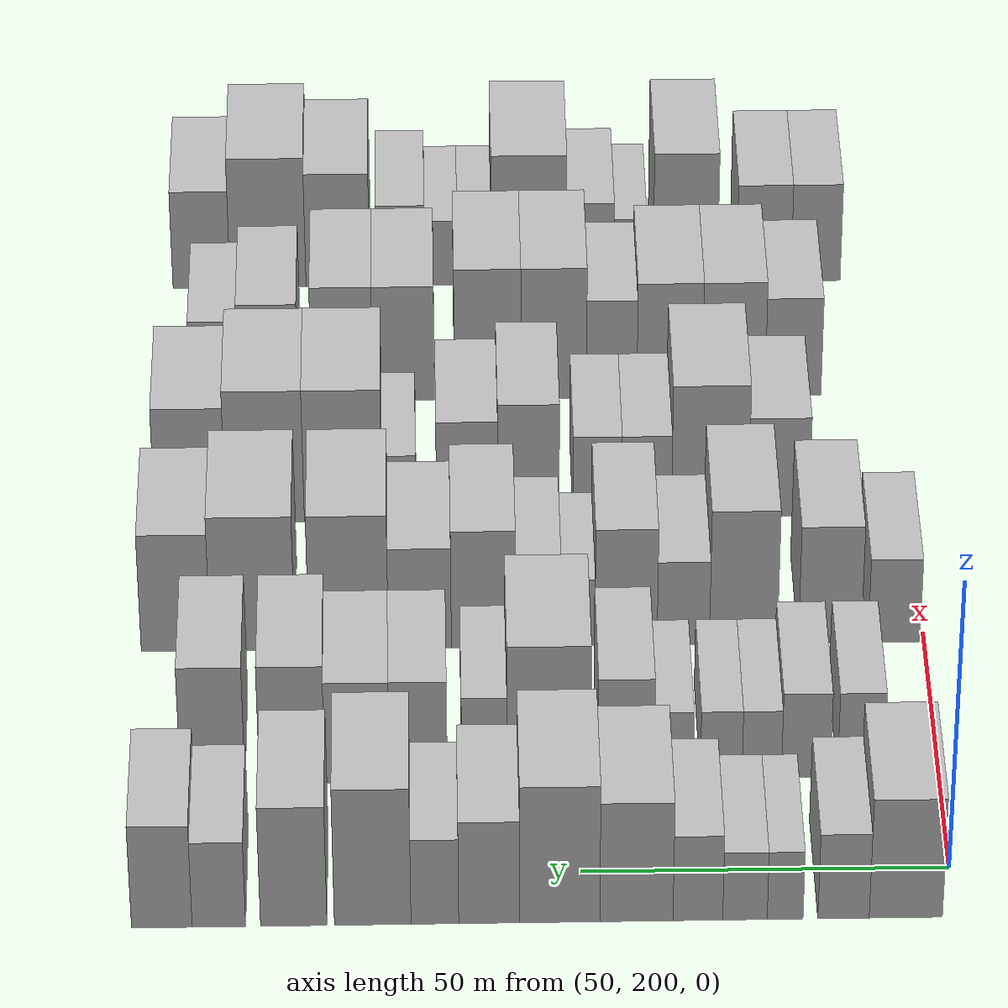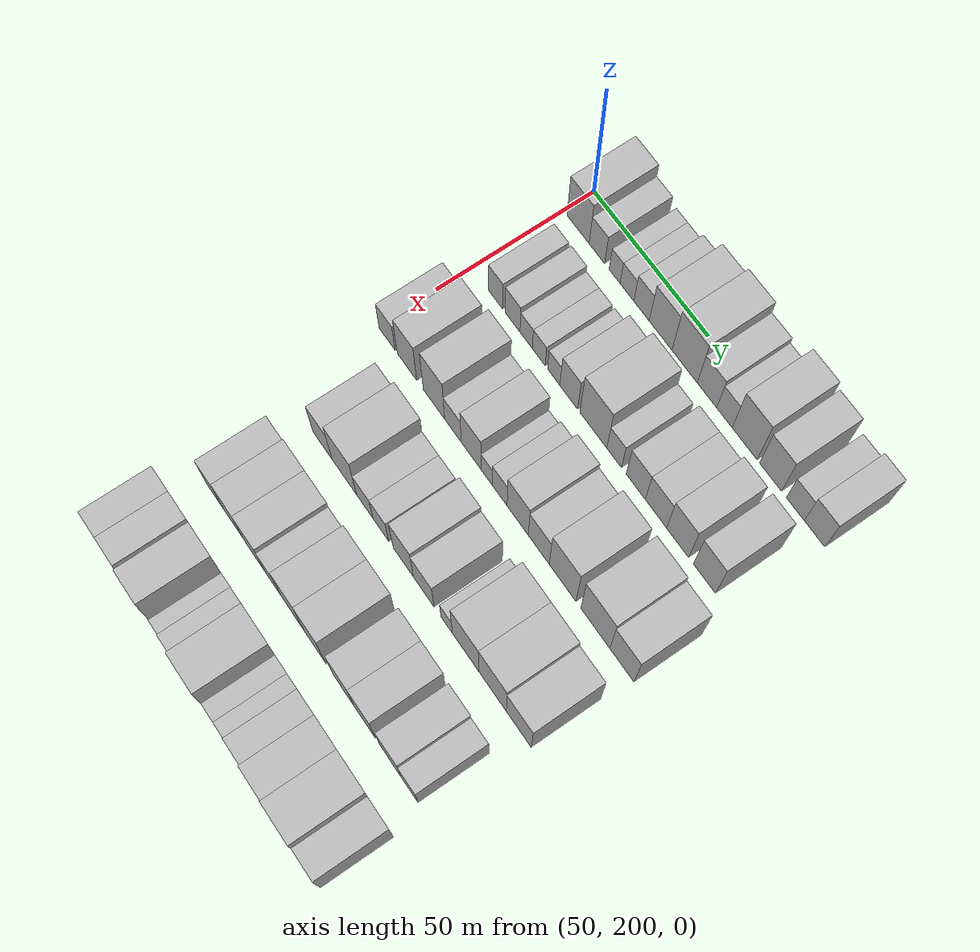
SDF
<sdf version="1.6">
 <world name="default">
  <model name="building_84">
   <static>1</static>
   <pose>50.0000 206.5942 0 0.000000 0.000000 0.000000</pose>
   <link name="link">
    <pose>0 0 10.50 0 0 0</pose>
    <collision name="collision"><geometry><box><size>20.0000 9.8599 21.0000</size></box></geometry></collision>
    <visual name="visual">
     <cast_shadows>0</cast_shadows>
     <geometry><box><size>20.0000 9.8599 21.0000</size></box></geometry>
     <material>
      <script>
       <uri>model://HANNAS_wall/materials/scripts</uri>
       <uri>model://HANNAS_wall/materials/textures</uri>
       <name>vrc/HANNAS_wall</name>
      </script>
     </material>
    </visual>
   </link>
  </model>
  <model name="building_85">
   <static>1</static>
   <pose>50.0000 214.9751 0 0.000000 0.000000 0.000000</pose>
   <link name="link">
    <pose>0 0 7.50 0 0 0</pose>
    <collision name="collision"><geometry><box><size>20.0000 6.9020 15.0000</size></box></geometry></collision>
    <visual name="visual">
     <cast_shadows>0</cast_shadows>
     <geometry><box><size>20.0000 6.9020 15.0000</size></box></geometry>
     <material>
      <script>
       <uri>model://HANNAS_wall/materials/scripts</uri>
       <uri>model://HANNAS_wall/materials/textures</uri>
       <name>vrc/HANNAS_wall</name>
      </script>
     </material>
    </visual>
   </link>
  </model>
  <model name="building_86">
   <static>1</static>
   <pose>50.0000 222.8343 0 0.000000 0.000000 0.000000</pose>
   <link name="link">
    <pose>0 0 6.00 0 0 0</pose>
    <collision name="collision"><geometry><box><size>20.0000 4.8164 12.0000</size></box></geometry></collision>
    <visual name="visual">
     <cast_shadows>0</cast_shadows>
     <geometry><box><size>20.0000 4.8164 12.0000</size></box></geometry>
     <material>
      <script>
       <uri>model://HANNAS_wall/materials/scripts</uri>
       <uri>model://HANNAS_wall/materials/textures</uri>
       <name>vrc/HANNAS_wall</name>
      </script>
     </material>
    </visual>
   </link>
  </model>
  <model name="building_87">
   <static>1</static>
   <pose>50.0000 228.2377 0 0.000000 0.000000 0.000000</pose>
   <link name="link">
    <pose>0 0 6.00 0 0 0</pose>
    <collision name="collision"><geometry><box><size>20.0000 5.9903 12.0000</size></box></geometry></collision>
    <visual name="visual">
     <cast_shadows>0</cast_shadows>
     <geometry><box><size>20.0000 5.9903 12.0000</size></box></geometry>
     <material>
      <script>
       <uri>model://HANNAS_wall/materials/scripts</uri>
       <uri>model://HANNAS_wall/materials/textures</uri>
       <name>vrc/HANNAS_wall</name>
      </script>
     </material>
    </visual>
   </link>
  </model>
  <model name="building_88">
   <static>1</static>
   <pose>50.0000 234.5737 0 0.000000 0.000000 0.000000</pose>
   <link name="link">
    <pose>0 0 7.50 0 0 0</pose>
    <collision name="collision"><geometry><box><size>20.0000 6.6818 15.0000</size></box></geometry></collision>
    <visual name="visual">
     <cast_shadows>0</cast_shadows>
     <geometry><box><size>20.0000 6.6818 15.0000</size></box></geometry>
     <material>
      <script>
       <uri>model://HANNAS_wall/materials/scripts</uri>
       <uri>model://HANNAS_wall/materials/textures</uri>
       <name>vrc/HANNAS_wall</name>
      </script>
     </material>
    </visual>
   </link>
  </model>
  <model name="building_89">
   <static>1</static>
   <pose>50.0000 242.8303 0 0.000000 0.000000 0.000000</pose>
   <link name="link">
    <pose>0 0 10.50 0 0 0</pose>
    <collision name="collision"><geometry><box><size>20.0000 9.8315 21.0000</size></box></geometry></collision>
    <visual name="visual">
     <cast_shadows>0</cast_shadows>
     <geometry><box><size>20.0000 9.8315 21.0000</size></box></geometry>
     <material>
      <script>
       <uri>model://HANNAS_wall/materials/scripts</uri>
       <uri>model://HANNAS_wall/materials/textures</uri>
       <name>vrc/HANNAS_wall</name>
      </script>
     </material>
    </visual>
   </link>
  </model>
  <model name="building_90">
   <static>1</static>
   <pose>50.0000 253.1316 0 0.000000 0.000000 0.000000</pose>
   <link name="link">
    <pose>0 0 12.00 0 0 0</pose>
    <collision name="collision"><geometry><box><size>20.0000 10.7710 24.0000</size></box></geometry></collision>
    <visual name="visual">
     <cast_shadows>0</cast_shadows>
     <geometry><box><size>20.0000 10.7710 24.0000</size></box></geometry>
     <material>
      <script>
       <uri>model://HANNAS_wall/materials/scripts</uri>
       <uri>model://HANNAS_wall/materials/textures</uri>
       <name>vrc/HANNAS_wall</name>
      </script>
     </material>
    </visual>
   </link>
  </model>
  <model name="building_91">
   <static>1</static>
   <pose>50.0000 262.6125 0 0.000000 0.000000 0.000000</pose>
   <link name="link">
    <pose>0 0 9.00 0 0 0</pose>
    <collision name="collision"><geometry><box><size>20.0000 8.1908 18.0000</size></box></geometry></collision>
    <visual name="visual">
     <cast_shadows>0</cast_shadows>
     <geometry><box><size>20.0000 8.1908 18.0000</size></box></geometry>
     <material>
      <script>
       <uri>model://HANNAS_wall/materials/scripts</uri>
       <uri>model://HANNAS_wall/materials/textures</uri>
       <name>vrc/HANNAS_wall</name>
      </script>
     </material>
    </visual>
   </link>
  </model>
  <model name="building_92">
   <static>1</static>
   <pose>50.0000 269.9085 0 0.000000 0.000000 0.000000</pose>
   <link name="link">
    <pose>0 0 7.50 0 0 0</pose>
    <collision name="collision"><geometry><box><size>20.0000 6.4012 15.0000</size></box></geometry></collision>
    <visual name="visual">
     <cast_shadows>0</cast_shadows>
     <geometry><box><size>20.0000 6.4012 15.0000</size></box></geometry>
     <material>
      <script>
       <uri>model://HANNAS_wall/materials/scripts</uri>
       <uri>model://HANNAS_wall/materials/textures</uri>
       <name>vrc/HANNAS_wall</name>
      </script>
     </material>
    </visual>
   </link>
  </model>
  <model name="building_93">
   <static>1</static>
   <pose>50.0000 278.2478 0 0.000000 0.000000 0.000000</pose>
   <link name="link">
    <pose>0 0 12.00 0 0 0</pose>
    <collision name="collision"><geometry><box><size>20.0000 10.2775 24.0000</size></box></geometry></collision>
    <visual name="visual">
     <cast_shadows>0</cast_shadows>
     <geometry><box><size>20.0000 10.2775 24.0000</size></box></geometry>
     <material>
      <script>
       <uri>model://HANNAS_wall/materials/scripts</uri>
       <uri>model://HANNAS_wall/materials/textures</uri>
       <name>vrc/HANNAS_wall</name>
      </script>
     </material>
    </visual>
   </link>
  </model>
  <model name="building_94">
   <static>1</static>
   <pose>50.0000 288.8457 0 0.000000 0.000000 0.000000</pose>
   <link name="link">
    <pose>0 0 10.50 0 0 0</pose>
    <collision name="collision"><geometry><box><size>20.0000 8.9183 21.0000</size></box></geometry></collision>
    <visual name="visual">
     <cast_shadows>0</cast_shadows>
     <geometry><box><size>20.0000 8.9183 21.0000</size></box></geometry>
     <material>
      <script>
       <uri>model://HANNAS_wall/materials/scripts</uri>
       <uri>model://HANNAS_wall/materials/textures</uri>
       <name>vrc/HANNAS_wall</name>
      </script>
     </material>
    </visual>
   </link>
  </model>
  <model name="building_95">
   <static>1</static>
   <pose>50.0000 298.8911 0 0.000000 0.000000 0.000000</pose>
   <link name="link">
    <pose>0 0 7.50 0 0 0</pose>
    <collision name="collision"><geometry><box><size>20.0000 7.1725 15.0000</size></box></geometry></collision>
    <visual name="visual">
     <cast_shadows>0</cast_shadows>
     <geometry><box><size>20.0000 7.1725 15.0000</size></box></geometry>
     <material>
      <script>
       <uri>model://HANNAS_wall/materials/scripts</uri>
       <uri>model://HANNAS_wall/materials/textures</uri>
       <name>vrc/HANNAS_wall</name>
      </script>
     </material>
    </visual>
   </link>
  </model>
  <model name="building_96">
   <static>1</static>
   <pose>50.0000 306.5423 0 0.000000 0.000000 0.000000</pose>
   <link name="link">
    <pose>0 0 9.00 0 0 0</pose>
    <collision name="collision"><geometry><box><size>20.0000 8.1299 18.0000</size></box></geometry></collision>
    <visual name="visual">
     <cast_shadows>0</cast_shadows>
     <geometry><box><size>20.0000 8.1299 18.0000</size></box></geometry>
     <material>
      <script>
       <uri>model://HANNAS_wall/materials/scripts</uri>
       <uri>model://HANNAS_wall/materials/textures</uri>
       <name>vrc/HANNAS_wall</name>
      </script>
     </material>
    </visual>
   </link>
  </model>
  <model name="building_198">
   <static>1</static>
   <pose>79.0000 210.8649 0 0.000000 0.000000 0.000000</pose>
   <link name="link">
    <pose>0 0 7.50 0 0 0</pose>
    <collision name="collision"><geometry><box><size>20.0000 6.4027 15.0000</size></box></geometry></collision>
    <visual name="visual">
     <cast_shadows>0</cast_shadows>
     <geometry><box><size>20.0000 6.4027 15.0000</size></box></geometry>
     <material>
      <script>
       <uri>model://HANNAS_wall/materials/scripts</uri>
       <uri>model://HANNAS_wall/materials/textures</uri>
       <name>vrc/HANNAS_wall</name>
      </script>
     </material>
    </visual>
   </link>
  </model>
  <model name="building_199">
   <static>1</static>
   <pose>79.0000 218.4433 0 0.000000 0.000000 0.000000</pose>
   <link name="link">
    <pose>0 0 7.50 0 0 0</pose>
    <collision name="collision"><geometry><box><size>20.0000 6.7541 15.0000</size></box></geometry></collision>
    <visual name="visual">
     <cast_shadows>0</cast_shadows>
     <geometry><box><size>20.0000 6.7541 15.0000</size></box></geometry>
     <material>
      <script>
       <uri>model://HANNAS_wall/materials/scripts</uri>
       <uri>model://HANNAS_wall/materials/textures</uri>
       <name>vrc/HANNAS_wall</name>
      </script>
     </material>
    </visual>
   </link>
  </model>
  <model name="building_200">
   <static>1</static>
   <pose>79.0000 224.5482 0 0.000000 0.000000 0.000000</pose>
   <link name="link">
    <pose>0 0 6.00 0 0 0</pose>
    <collision name="collision"><geometry><box><size>20.0000 5.4557 12.0000</size></box></geometry></collision>
    <visual name="visual">
     <cast_shadows>0</cast_shadows>
     <geometry><box><size>20.0000 5.4557 12.0000</size></box></geometry>
     <material>
      <script>
       <uri>model://HANNAS_wall/materials/scripts</uri>
       <uri>model://HANNAS_wall/materials/textures</uri>
       <name>vrc/HANNAS_wall</name>
      </script>
     </material>
    </visual>
   </link>
  </model>
  <model name="building_201">
   <static>1</static>
   <pose>79.0000 230.1571 0 0.000000 0.000000 0.000000</pose>
   <link name="link">
    <pose>0 0 6.00 0 0 0</pose>
    <collision name="collision"><geometry><box><size>20.0000 5.7620 12.0000</size></box></geometry></collision>
    <visual name="visual">
     <cast_shadows>0</cast_shadows>
     <geometry><box><size>20.0000 5.7620 12.0000</size></box></geometry>
     <material>
      <script>
       <uri>model://HANNAS_wall/materials/scripts</uri>
       <uri>model://HANNAS_wall/materials/textures</uri>
       <name>vrc/HANNAS_wall</name>
      </script>
     </material>
    </visual>
   </link>
  </model>
  <model name="building_202">
   <static>1</static>
   <pose>79.0000 236.7362 0 0.000000 0.000000 0.000000</pose>
   <link name="link">
    <pose>0 0 6.00 0 0 0</pose>
    <collision name="collision"><geometry><box><size>20.0000 5.3963 12.0000</size></box></geometry></collision>
    <visual name="visual">
     <cast_shadows>0</cast_shadows>
     <geometry><box><size>20.0000 5.3963 12.0000</size></box></geometry>
     <material>
      <script>
       <uri>model://HANNAS_wall/materials/scripts</uri>
       <uri>model://HANNAS_wall/materials/textures</uri>
       <name>vrc/HANNAS_wall</name>
      </script>
     </material>
    </visual>
   </link>
  </model>
  <model name="building_203">
   <static>1</static>
   <pose>79.0000 243.3040 0 0.000000 0.000000 0.000000</pose>
   <link name="link">
    <pose>0 0 9.00 0 0 0</pose>
    <collision name="collision"><geometry><box><size>20.0000 7.7391 18.0000</size></box></geometry></collision>
    <visual name="visual">
     <cast_shadows>0</cast_shadows>
     <geometry><box><size>20.0000 7.7391 18.0000</size></box></geometry>
     <material>
      <script>
       <uri>model://HANNAS_wall/materials/scripts</uri>
       <uri>model://HANNAS_wall/materials/textures</uri>
       <name>vrc/HANNAS_wall</name>
      </script>
     </material>
    </visual>
   </link>
  </model>
  <model name="building_204">
   <static>1</static>
   <pose>79.0000 253.9514 0 0.000000 0.000000 0.000000</pose>
   <link name="link">
    <pose>0 0 12.00 0 0 0</pose>
    <collision name="collision"><geometry><box><size>20.0000 11.5557 24.0000</size></box></geometry></collision>
    <visual name="visual">
     <cast_shadows>0</cast_shadows>
     <geometry><box><size>20.0000 11.5557 24.0000</size></box></geometry>
     <material>
      <script>
       <uri>model://HANNAS_wall/materials/scripts</uri>
       <uri>model://HANNAS_wall/materials/textures</uri>
       <name>vrc/HANNAS_wall</name>
      </script>
     </material>
    </visual>
   </link>
  </model>
  <model name="building_205">
   <static>1</static>
   <pose>79.0000 262.8556 0 0.000000 0.000000 0.000000</pose>
   <link name="link">
    <pose>0 0 7.50 0 0 0</pose>
    <collision name="collision"><geometry><box><size>20.0000 6.2528 15.0000</size></box></geometry></collision>
    <visual name="visual">
     <cast_shadows>0</cast_shadows>
     <geometry><box><size>20.0000 6.2528 15.0000</size></box></geometry>
     <material>
      <script>
       <uri>model://HANNAS_wall/materials/scripts</uri>
       <uri>model://HANNAS_wall/materials/textures</uri>
       <name>vrc/HANNAS_wall</name>
      </script>
     </material>
    </visual>
   </link>
  </model>
  <model name="building_206">
   <static>1</static>
   <pose>79.0000 271.9974 0 0.000000 0.000000 0.000000</pose>
   <link name="link">
    <pose>0 0 9.00 0 0 0</pose>
    <collision name="collision"><geometry><box><size>20.0000 8.0308 18.0000</size></box></geometry></collision>
    <visual name="visual">
     <cast_shadows>0</cast_shadows>
     <geometry><box><size>20.0000 8.0308 18.0000</size></box></geometry>
     <material>
      <script>
       <uri>model://HANNAS_wall/materials/scripts</uri>
       <uri>model://HANNAS_wall/materials/textures</uri>
       <name>vrc/HANNAS_wall</name>
      </script>
     </material>
    </visual>
   </link>
  </model>
  <model name="building_207">
   <static>1</static>
   <pose>79.0000 280.4462 0 0.000000 0.000000 0.000000</pose>
   <link name="link">
    <pose>0 0 9.00 0 0 0</pose>
    <collision name="collision"><geometry><box><size>20.0000 8.8668 18.0000</size></box></geometry></collision>
    <visual name="visual">
     <cast_shadows>0</cast_shadows>
     <geometry><box><size>20.0000 8.8668 18.0000</size></box></geometry>
     <material>
      <script>
       <uri>model://HANNAS_wall/materials/scripts</uri>
       <uri>model://HANNAS_wall/materials/textures</uri>
       <name>vrc/HANNAS_wall</name>
      </script>
     </material>
    </visual>
   </link>
  </model>
  <model name="building_208">
   <static>1</static>
   <pose>79.0000 289.3889 0 0.000000 0.000000 0.000000</pose>
   <link name="link">
    <pose>0 0 10.50 0 0 0</pose>
    <collision name="collision"><geometry><box><size>20.0000 9.0186 21.0000</size></box></geometry></collision>
    <visual name="visual">
     <cast_shadows>0</cast_shadows>
     <geometry><box><size>20.0000 9.0186 21.0000</size></box></geometry>
     <material>
      <script>
       <uri>model://HANNAS_wall/materials/scripts</uri>
       <uri>model://HANNAS_wall/materials/textures</uri>
       <name>vrc/HANNAS_wall</name>
      </script>
     </material>
    </visual>
   </link>
  </model>
  <model name="building_209">
   <static>1</static>
   <pose>79.0000 300.3425 0 0.000000 0.000000 0.000000</pose>
   <link name="link">
    <pose>0 0 10.50 0 0 0</pose>
    <collision name="collision"><geometry><box><size>20.0000 8.8886 21.0000</size></box></geometry></collision>
    <visual name="visual">
     <cast_shadows>0</cast_shadows>
     <geometry><box><size>20.0000 8.8886 21.0000</size></box></geometry>
     <material>
      <script>
       <uri>model://HANNAS_wall/materials/scripts</uri>
       <uri>model://HANNAS_wall/materials/textures</uri>
       <name>vrc/HANNAS_wall</name>
      </script>
     </material>
    </visual>
   </link>
  </model>
  <model name="building_315">
   <static>1</static>
   <pose>108.0000 204.2993 0 0.000000 0.000000 0.000000</pose>
   <link name="link">
    <pose>0 0 7.50 0 0 0</pose>
    <collision name="collision"><geometry><box><size>20.0000 7.3593 15.0000</size></box></geometry></collision>
    <visual name="visual">
     <cast_shadows>0</cast_shadows>
     <geometry><box><size>20.0000 7.3593 15.0000</size></box></geometry>
     <material>
      <script>
       <uri>model://HANNAS_wall/materials/scripts</uri>
       <uri>model://HANNAS_wall/materials/textures</uri>
       <name>vrc/HANNAS_wall</name>
      </script>
     </material>
    </visual>
   </link>
  </model>
  <model name="building_316">
   <static>1</static>
   <pose>108.0000 213.4390 0 0.000000 0.000000 0.000000</pose>
   <link name="link">
    <pose>0 0 10.50 0 0 0</pose>
    <collision name="collision"><geometry><box><size>20.0000 8.9201 21.0000</size></box></geometry></collision>
    <visual name="visual">
     <cast_shadows>0</cast_shadows>
     <geometry><box><size>20.0000 8.9201 21.0000</size></box></geometry>
     <material>
      <script>
       <uri>model://HANNAS_wall/materials/scripts</uri>
       <uri>model://HANNAS_wall/materials/textures</uri>
       <name>vrc/HANNAS_wall</name>
      </script>
     </material>
    </visual>
   </link>
  </model>
  <model name="building_317">
   <static>1</static>
   <pose>108.0000 225.7178 0 0.000000 0.000000 0.000000</pose>
   <link name="link">
    <pose>0 0 12.00 0 0 0</pose>
    <collision name="collision"><geometry><box><size>20.0000 9.6376 24.0000</size></box></geometry></collision>
    <visual name="visual">
     <cast_shadows>0</cast_shadows>
     <geometry><box><size>20.0000 9.6376 24.0000</size></box></geometry>
     <material>
      <script>
       <uri>model://HANNAS_wall/materials/scripts</uri>
       <uri>model://HANNAS_wall/materials/textures</uri>
       <name>vrc/HANNAS_wall</name>
      </script>
     </material>
    </visual>
   </link>
  </model>
  <model name="building_318">
   <static>1</static>
   <pose>108.0000 234.2484 0 0.000000 0.000000 0.000000</pose>
   <link name="link">
    <pose>0 0 7.50 0 0 0</pose>
    <collision name="collision"><geometry><box><size>20.0000 7.4236 15.0000</size></box></geometry></collision>
    <visual name="visual">
     <cast_shadows>0</cast_shadows>
     <geometry><box><size>20.0000 7.4236 15.0000</size></box></geometry>
     <material>
      <script>
       <uri>model://HANNAS_wall/materials/scripts</uri>
       <uri>model://HANNAS_wall/materials/textures</uri>
       <name>vrc/HANNAS_wall</name>
      </script>
     </material>
    </visual>
   </link>
  </model>
  <model name="building_319">
   <static>1</static>
   <pose>108.0000 242.3694 0 0.000000 0.000000 0.000000</pose>
   <link name="link">
    <pose>0 0 10.50 0 0 0</pose>
    <collision name="collision"><geometry><box><size>20.0000 8.8183 21.0000</size></box></geometry></collision>
    <visual name="visual">
     <cast_shadows>0</cast_shadows>
     <geometry><box><size>20.0000 8.8183 21.0000</size></box></geometry>
     <material>
      <script>
       <uri>model://HANNAS_wall/materials/scripts</uri>
       <uri>model://HANNAS_wall/materials/textures</uri>
       <name>vrc/HANNAS_wall</name>
      </script>
     </material>
    </visual>
   </link>
  </model>
  <model name="building_320">
   <static>1</static>
   <pose>108.0000 249.1935 0 0.000000 0.000000 0.000000</pose>
   <link name="link">
    <pose>0 0 6.00 0 0 0</pose>
    <collision name="collision"><geometry><box><size>20.0000 4.8300 12.0000</size></box></geometry></collision>
    <visual name="visual">
     <cast_shadows>0</cast_shadows>
     <geometry><box><size>20.0000 4.8300 12.0000</size></box></geometry>
     <material>
      <script>
       <uri>model://HANNAS_wall/materials/scripts</uri>
       <uri>model://HANNAS_wall/materials/textures</uri>
       <name>vrc/HANNAS_wall</name>
      </script>
     </material>
    </visual>
   </link>
  </model>
  <model name="building_321">
   <static>1</static>
   <pose>108.0000 254.8288 0 0.000000 0.000000 0.000000</pose>
   <link name="link">
    <pose>0 0 7.50 0 0 0</pose>
    <collision name="collision"><geometry><box><size>20.0000 6.4405 15.0000</size></box></geometry></collision>
    <visual name="visual">
     <cast_shadows>0</cast_shadows>
     <geometry><box><size>20.0000 6.4405 15.0000</size></box></geometry>
     <material>
      <script>
       <uri>model://HANNAS_wall/materials/scripts</uri>
       <uri>model://HANNAS_wall/materials/textures</uri>
       <name>vrc/HANNAS_wall</name>
      </script>
     </material>
    </visual>
   </link>
  </model>
  <model name="building_322">
   <static>1</static>
   <pose>108.0000 262.6040 0 0.000000 0.000000 0.000000</pose>
   <link name="link">
    <pose>0 0 10.50 0 0 0</pose>
    <collision name="collision"><geometry><box><size>20.0000 9.1100 21.0000</size></box></geometry></collision>
    <visual name="visual">
     <cast_shadows>0</cast_shadows>
     <geometry><box><size>20.0000 9.1100 21.0000</size></box></geometry>
     <material>
      <script>
       <uri>model://HANNAS_wall/materials/scripts</uri>
       <uri>model://HANNAS_wall/materials/textures</uri>
       <name>vrc/HANNAS_wall</name>
      </script>
     </material>
    </visual>
   </link>
  </model>
  <model name="building_323">
   <static>1</static>
   <pose>108.0000 271.6229 0 0.000000 0.000000 0.000000</pose>
   <link name="link">
    <pose>0 0 9.00 0 0 0</pose>
    <collision name="collision"><geometry><box><size>20.0000 8.9279 18.0000</size></box></geometry></collision>
    <visual name="visual">
     <cast_shadows>0</cast_shadows>
     <geometry><box><size>20.0000 8.9279 18.0000</size></box></geometry>
     <material>
      <script>
       <uri>model://HANNAS_wall/materials/scripts</uri>
       <uri>model://HANNAS_wall/materials/textures</uri>
       <name>vrc/HANNAS_wall</name>
      </script>
     </material>
    </visual>
   </link>
  </model>
  <model name="building_324">
   <static>1</static>
   <pose>108.0000 281.7200 0 0.000000 0.000000 0.000000</pose>
   <link name="link">
    <pose>0 0 12.00 0 0 0</pose>
    <collision name="collision"><geometry><box><size>20.0000 11.2662 24.0000</size></box></geometry></collision>
    <visual name="visual">
     <cast_shadows>0</cast_shadows>
     <geometry><box><size>20.0000 11.2662 24.0000</size></box></geometry>
     <material>
      <script>
       <uri>model://HANNAS_wall/materials/scripts</uri>
       <uri>model://HANNAS_wall/materials/textures</uri>
       <name>vrc/HANNAS_wall</name>
      </script>
     </material>
    </visual>
   </link>
  </model>
  <model name="building_325">
   <static>1</static>
   <pose>108.0000 295.3383 0 0.000000 0.000000 0.000000</pose>
   <link name="link">
    <pose>0 0 12.00 0 0 0</pose>
    <collision name="collision"><geometry><box><size>20.0000 11.9703 24.0000</size></box></geometry></collision>
    <visual name="visual">
     <cast_shadows>0</cast_shadows>
     <geometry><box><size>20.0000 11.9703 24.0000</size></box></geometry>
     <material>
      <script>
       <uri>model://HANNAS_wall/materials/scripts</uri>
       <uri>model://HANNAS_wall/materials/textures</uri>
       <name>vrc/HANNAS_wall</name>
      </script>
     </material>
    </visual>
   </link>
  </model>
  <model name="building_326">
   <static>1</static>
   <pose>108.0000 306.2283 0 0.000000 0.000000 0.000000</pose>
   <link name="link">
    <pose>0 0 10.50 0 0 0</pose>
    <collision name="collision"><geometry><box><size>20.0000 9.8098 21.0000</size></box></geometry></collision>
    <visual name="visual">
     <cast_shadows>0</cast_shadows>
     <geometry><box><size>20.0000 9.8098 21.0000</size></box></geometry>
     <material>
      <script>
       <uri>model://HANNAS_wall/materials/scripts</uri>
       <uri>model://HANNAS_wall/materials/textures</uri>
       <name>vrc/HANNAS_wall</name>
      </script>
     </material>
    </visual>
   </link>
  </model>
  <model name="building_417">
   <static>1</static>
   <pose>137.0000 219.1956 0 0.000000 0.000000 0.000000</pose>
   <link name="link">
    <pose>0 0 9.00 0 0 0</pose>
    <collision name="collision"><geometry><box><size>20.0000 8.8721 18.0000</size></box></geometry></collision>
    <visual name="visual">
     <cast_shadows>0</cast_shadows>
     <geometry><box><size>20.0000 8.8721 18.0000</size></box></geometry>
     <material>
      <script>
       <uri>model://HANNAS_wall/materials/scripts</uri>
       <uri>model://HANNAS_wall/materials/textures</uri>
       <name>vrc/HANNAS_wall</name>
      </script>
     </material>
    </visual>
   </link>
  </model>
  <model name="building_418">
   <static>1</static>
   <pose>137.0000 229.2378 0 0.000000 0.000000 0.000000</pose>
   <link name="link">
    <pose>0 0 12.00 0 0 0</pose>
    <collision name="collision"><geometry><box><size>20.0000 11.2122 24.0000</size></box></geometry></collision>
    <visual name="visual">
     <cast_shadows>0</cast_shadows>
     <geometry><box><size>20.0000 11.2122 24.0000</size></box></geometry>
     <material>
      <script>
       <uri>model://HANNAS_wall/materials/scripts</uri>
       <uri>model://HANNAS_wall/materials/textures</uri>
       <name>vrc/HANNAS_wall</name>
      </script>
     </material>
    </visual>
   </link>
  </model>
  <model name="building_419">
   <static>1</static>
   <pose>137.0000 238.4730 0 0.000000 0.000000 0.000000</pose>
   <link name="link">
    <pose>0 0 7.50 0 0 0</pose>
    <collision name="collision"><geometry><box><size>20.0000 7.2583 15.0000</size></box></geometry></collision>
    <visual name="visual">
     <cast_shadows>0</cast_shadows>
     <geometry><box><size>20.0000 7.2583 15.0000</size></box></geometry>
     <material>
      <script>
       <uri>model://HANNAS_wall/materials/scripts</uri>
       <uri>model://HANNAS_wall/materials/textures</uri>
       <name>vrc/HANNAS_wall</name>
      </script>
     </material>
    </visual>
   </link>
  </model>
  <model name="building_420">
   <static>1</static>
   <pose>137.0000 245.6468 0 0.000000 0.000000 0.000000</pose>
   <link name="link">
    <pose>0 0 7.50 0 0 0</pose>
    <collision name="collision"><geometry><box><size>20.0000 7.0895 15.0000</size></box></geometry></collision>
    <visual name="visual">
     <cast_shadows>0</cast_shadows>
     <geometry><box><size>20.0000 7.0895 15.0000</size></box></geometry>
     <material>
      <script>
       <uri>model://HANNAS_wall/materials/scripts</uri>
       <uri>model://HANNAS_wall/materials/textures</uri>
       <name>vrc/HANNAS_wall</name>
      </script>
     </material>
    </visual>
   </link>
  </model>
  <model name="building_421">
   <static>1</static>
   <pose>137.0000 255.6556 0 0.000000 0.000000 0.000000</pose>
   <link name="link">
    <pose>0 0 10.50 0 0 0</pose>
    <collision name="collision"><geometry><box><size>20.0000 8.9280 21.0000</size></box></geometry></collision>
    <visual name="visual">
     <cast_shadows>0</cast_shadows>
     <geometry><box><size>20.0000 8.9280 21.0000</size></box></geometry>
     <material>
      <script>
       <uri>model://HANNAS_wall/materials/scripts</uri>
       <uri>model://HANNAS_wall/materials/textures</uri>
       <name>vrc/HANNAS_wall</name>
      </script>
     </material>
    </visual>
   </link>
  </model>
  <model name="building_422">
   <static>1</static>
   <pose>137.0000 264.5744 0 0.000000 0.000000 0.000000</pose>
   <link name="link">
    <pose>0 0 9.00 0 0 0</pose>
    <collision name="collision"><geometry><box><size>20.0000 8.9097 18.0000</size></box></geometry></collision>
    <visual name="visual">
     <cast_shadows>0</cast_shadows>
     <geometry><box><size>20.0000 8.9097 18.0000</size></box></geometry>
     <material>
      <script>
       <uri>model://HANNAS_wall/materials/scripts</uri>
       <uri>model://HANNAS_wall/materials/textures</uri>
       <name>vrc/HANNAS_wall</name>
      </script>
     </material>
    </visual>
   </link>
  </model>
  <model name="building_423">
   <static>1</static>
   <pose>137.0000 274.5035 0 0.000000 0.000000 0.000000</pose>
   <link name="link">
    <pose>0 0 6.00 0 0 0</pose>
    <collision name="collision"><geometry><box><size>20.0000 4.9484 12.0000</size></box></geometry></collision>
    <visual name="visual">
     <cast_shadows>0</cast_shadows>
     <geometry><box><size>20.0000 4.9484 12.0000</size></box></geometry>
     <material>
      <script>
       <uri>model://HANNAS_wall/materials/scripts</uri>
       <uri>model://HANNAS_wall/materials/textures</uri>
       <name>vrc/HANNAS_wall</name>
      </script>
     </material>
    </visual>
   </link>
  </model>
  <model name="building_424">
   <static>1</static>
   <pose>137.0000 282.6478 0 0.000000 0.000000 0.000000</pose>
   <link name="link">
    <pose>0 0 12.00 0 0 0</pose>
    <collision name="collision"><geometry><box><size>20.0000 11.3403 24.0000</size></box></geometry></collision>
    <visual name="visual">
     <cast_shadows>0</cast_shadows>
     <geometry><box><size>20.0000 11.3403 24.0000</size></box></geometry>
     <material>
      <script>
       <uri>model://HANNAS_wall/materials/scripts</uri>
       <uri>model://HANNAS_wall/materials/textures</uri>
       <name>vrc/HANNAS_wall</name>
      </script>
     </material>
    </visual>
   </link>
  </model>
  <model name="building_425">
   <static>1</static>
   <pose>137.0000 294.0297 0 0.000000 0.000000 0.000000</pose>
   <link name="link">
    <pose>0 0 12.00 0 0 0</pose>
    <collision name="collision"><geometry><box><size>20.0000 11.4236 24.0000</size></box></geometry></collision>
    <visual name="visual">
     <cast_shadows>0</cast_shadows>
     <geometry><box><size>20.0000 11.4236 24.0000</size></box></geometry>
     <material>
      <script>
       <uri>model://HANNAS_wall/materials/scripts</uri>
       <uri>model://HANNAS_wall/materials/textures</uri>
       <name>vrc/HANNAS_wall</name>
      </script>
     </material>
    </visual>
   </link>
  </model>
  <model name="building_426">
   <static>1</static>
   <pose>137.0000 304.8917 0 0.000000 0.000000 0.000000</pose>
   <link name="link">
    <pose>0 0 10.50 0 0 0</pose>
    <collision name="collision"><geometry><box><size>20.0000 10.3003 21.0000</size></box></geometry></collision>
    <visual name="visual">
     <cast_shadows>0</cast_shadows>
     <geometry><box><size>20.0000 10.3003 21.0000</size></box></geometry>
     <material>
      <script>
       <uri>model://HANNAS_wall/materials/scripts</uri>
       <uri>model://HANNAS_wall/materials/textures</uri>
       <name>vrc/HANNAS_wall</name>
      </script>
     </material>
    </visual>
   </link>
  </model>
  <model name="building_533">
   <static>1</static>
   <pose>166.0000 215.5402 0 0.000000 0.000000 0.000000</pose>
   <link name="link">
    <pose>0 0 9.00 0 0 0</pose>
    <collision name="collision"><geometry><box><size>20.0000 8.3788 18.0000</size></box></geometry></collision>
    <visual name="visual">
     <cast_shadows>0</cast_shadows>
     <geometry><box><size>20.0000 8.3788 18.0000</size></box></geometry>
     <material>
      <script>
       <uri>model://HANNAS_wall/materials/scripts</uri>
       <uri>model://HANNAS_wall/materials/textures</uri>
       <name>vrc/HANNAS_wall</name>
      </script>
     </material>
    </visual>
   </link>
  </model>
  <model name="building_534">
   <static>1</static>
   <pose>166.0000 224.4127 0 0.000000 0.000000 0.000000</pose>
   <link name="link">
    <pose>0 0 10.50 0 0 0</pose>
    <collision name="collision"><geometry><box><size>20.0000 9.3660 21.0000</size></box></geometry></collision>
    <visual name="visual">
     <cast_shadows>0</cast_shadows>
     <geometry><box><size>20.0000 9.3660 21.0000</size></box></geometry>
     <material>
      <script>
       <uri>model://HANNAS_wall/materials/scripts</uri>
       <uri>model://HANNAS_wall/materials/textures</uri>
       <name>vrc/HANNAS_wall</name>
      </script>
     </material>
    </visual>
   </link>
  </model>
  <model name="building_535">
   <static>1</static>
   <pose>166.0000 233.9990 0 0.000000 0.000000 0.000000</pose>
   <link name="link">
    <pose>0 0 10.50 0 0 0</pose>
    <collision name="collision"><geometry><box><size>20.0000 9.8067 21.0000</size></box></geometry></collision>
    <visual name="visual">
     <cast_shadows>0</cast_shadows>
     <geometry><box><size>20.0000 9.8067 21.0000</size></box></geometry>
     <material>
      <script>
       <uri>model://HANNAS_wall/materials/scripts</uri>
       <uri>model://HANNAS_wall/materials/textures</uri>
       <name>vrc/HANNAS_wall</name>
      </script>
     </material>
    </visual>
   </link>
  </model>
  <model name="building_536">
   <static>1</static>
   <pose>166.0000 242.6717 0 0.000000 0.000000 0.000000</pose>
   <link name="link">
    <pose>0 0 9.00 0 0 0</pose>
    <collision name="collision"><geometry><box><size>20.0000 7.5386 18.0000</size></box></geometry></collision>
    <visual name="visual">
     <cast_shadows>0</cast_shadows>
     <geometry><box><size>20.0000 7.5386 18.0000</size></box></geometry>
     <material>
      <script>
       <uri>model://HANNAS_wall/materials/scripts</uri>
       <uri>model://HANNAS_wall/materials/textures</uri>
       <name>vrc/HANNAS_wall</name>
      </script>
     </material>
    </visual>
   </link>
  </model>
  <model name="building_537">
   <static>1</static>
   <pose>166.0000 251.3366 0 0.000000 0.000000 0.000000</pose>
   <link name="link">
    <pose>0 0 12.00 0 0 0</pose>
    <collision name="collision"><geometry><box><size>20.0000 9.7913 24.0000</size></box></geometry></collision>
    <visual name="visual">
     <cast_shadows>0</cast_shadows>
     <geometry><box><size>20.0000 9.7913 24.0000</size></box></geometry>
     <material>
      <script>
       <uri>model://HANNAS_wall/materials/scripts</uri>
       <uri>model://HANNAS_wall/materials/textures</uri>
       <name>vrc/HANNAS_wall</name>
      </script>
     </material>
    </visual>
   </link>
  </model>
  <model name="building_538">
   <static>1</static>
   <pose>166.0000 261.1906 0 0.000000 0.000000 0.000000</pose>
   <link name="link">
    <pose>0 0 12.00 0 0 0</pose>
    <collision name="collision"><geometry><box><size>20.0000 9.9167 24.0000</size></box></geometry></collision>
    <visual name="visual">
     <cast_shadows>0</cast_shadows>
     <geometry><box><size>20.0000 9.9167 24.0000</size></box></geometry>
     <material>
      <script>
       <uri>model://HANNAS_wall/materials/scripts</uri>
       <uri>model://HANNAS_wall/materials/textures</uri>
       <name>vrc/HANNAS_wall</name>
      </script>
     </material>
    </visual>
   </link>
  </model>
  <model name="building_539">
   <static>1</static>
   <pose>166.0000 273.7605 0 0.000000 0.000000 0.000000</pose>
   <link name="link">
    <pose>0 0 10.50 0 0 0</pose>
    <collision name="collision"><geometry><box><size>20.0000 9.2232 21.0000</size></box></geometry></collision>
    <visual name="visual">
     <cast_shadows>0</cast_shadows>
     <geometry><box><size>20.0000 9.2232 21.0000</size></box></geometry>
     <material>
      <script>
       <uri>model://HANNAS_wall/materials/scripts</uri>
       <uri>model://HANNAS_wall/materials/textures</uri>
       <name>vrc/HANNAS_wall</name>
      </script>
     </material>
    </visual>
   </link>
  </model>
  <model name="building_540">
   <static>1</static>
   <pose>166.0000 282.9328 0 0.000000 0.000000 0.000000</pose>
   <link name="link">
    <pose>0 0 10.50 0 0 0</pose>
    <collision name="collision"><geometry><box><size>20.0000 9.1214 21.0000</size></box></geometry></collision>
    <visual name="visual">
     <cast_shadows>0</cast_shadows>
     <geometry><box><size>20.0000 9.1214 21.0000</size></box></geometry>
     <material>
      <script>
       <uri>model://HANNAS_wall/materials/scripts</uri>
       <uri>model://HANNAS_wall/materials/textures</uri>
       <name>vrc/HANNAS_wall</name>
      </script>
     </material>
    </visual>
   </link>
  </model>
  <model name="building_541">
   <static>1</static>
   <pose>166.0000 293.9727 0 0.000000 0.000000 0.000000</pose>
   <link name="link">
    <pose>0 0 9.00 0 0 0</pose>
    <collision name="collision"><geometry><box><size>20.0000 8.9584 18.0000</size></box></geometry></collision>
    <visual name="visual">
     <cast_shadows>0</cast_shadows>
     <geometry><box><size>20.0000 8.9584 18.0000</size></box></geometry>
     <material>
      <script>
       <uri>model://HANNAS_wall/materials/scripts</uri>
       <uri>model://HANNAS_wall/materials/textures</uri>
       <name>vrc/HANNAS_wall</name>
      </script>
     </material>
    </visual>
   </link>
  </model>
  <model name="building_542">
   <static>1</static>
   <pose>166.0000 302.0447 0 0.000000 0.000000 0.000000</pose>
   <link name="link">
    <pose>0 0 7.50 0 0 0</pose>
    <collision name="collision"><geometry><box><size>20.0000 7.1855 15.0000</size></box></geometry></collision>
    <visual name="visual">
     <cast_shadows>0</cast_shadows>
     <geometry><box><size>20.0000 7.1855 15.0000</size></box></geometry>
     <material>
      <script>
       <uri>model://HANNAS_wall/materials/scripts</uri>
       <uri>model://HANNAS_wall/materials/textures</uri>
       <name>vrc/HANNAS_wall</name>
      </script>
     </material>
    </visual>
   </link>
  </model>
  <model name="building_650">
   <static>1</static>
   <pose>195.0000 210.5116 0 0.000000 0.000000 0.000000</pose>
   <link name="link">
    <pose>0 0 9.00 0 0 0</pose>
    <collision name="collision"><geometry><box><size>20.0000 7.5576 18.0000</size></box></geometry></collision>
    <visual name="visual">
     <cast_shadows>0</cast_shadows>
     <geometry><box><size>20.0000 7.5576 18.0000</size></box></geometry>
     <material>
      <script>
       <uri>model://HANNAS_wall/materials/scripts</uri>
       <uri>model://HANNAS_wall/materials/textures</uri>
       <name>vrc/HANNAS_wall</name>
      </script>
     </material>
    </visual>
   </link>
  </model>
  <model name="building_651">
   <static>1</static>
   <pose>195.0000 218.4437 0 0.000000 0.000000 0.000000</pose>
   <link name="link">
    <pose>0 0 9.00 0 0 0</pose>
    <collision name="collision"><geometry><box><size>20.0000 8.3067 18.0000</size></box></geometry></collision>
    <visual name="visual">
     <cast_shadows>0</cast_shadows>
     <geometry><box><size>20.0000 8.3067 18.0000</size></box></geometry>
     <material>
      <script>
       <uri>model://HANNAS_wall/materials/scripts</uri>
       <uri>model://HANNAS_wall/materials/textures</uri>
       <name>vrc/HANNAS_wall</name>
      </script>
     </material>
    </visual>
   </link>
  </model>
  <model name="building_652">
   <static>1</static>
   <pose>195.0000 230.5320 0 0.000000 0.000000 0.000000</pose>
   <link name="link">
    <pose>0 0 12.00 0 0 0</pose>
    <collision name="collision"><geometry><box><size>20.0000 9.8699 24.0000</size></box></geometry></collision>
    <visual name="visual">
     <cast_shadows>0</cast_shadows>
     <geometry><box><size>20.0000 9.8699 24.0000</size></box></geometry>
     <material>
      <script>
       <uri>model://HANNAS_wall/materials/scripts</uri>
       <uri>model://HANNAS_wall/materials/textures</uri>
       <name>vrc/HANNAS_wall</name>
      </script>
     </material>
    </visual>
   </link>
  </model>
  <model name="building_653">
   <static>1</static>
   <pose>195.0000 238.9717 0 0.000000 0.000000 0.000000</pose>
   <link name="link">
    <pose>0 0 6.00 0 0 0</pose>
    <collision name="collision"><geometry><box><size>20.0000 5.0095 12.0000</size></box></geometry></collision>
    <visual name="visual">
     <cast_shadows>0</cast_shadows>
     <geometry><box><size>20.0000 5.0095 12.0000</size></box></geometry>
     <material>
      <script>
       <uri>model://HANNAS_wall/materials/scripts</uri>
       <uri>model://HANNAS_wall/materials/textures</uri>
       <name>vrc/HANNAS_wall</name>
      </script>
     </material>
    </visual>
   </link>
  </model>
  <model name="building_654">
   <static>1</static>
   <pose>195.0000 245.1163 0 0.000000 0.000000 0.000000</pose>
   <link name="link">
    <pose>0 0 7.50 0 0 0</pose>
    <collision name="collision"><geometry><box><size>20.0000 7.2798 15.0000</size></box></geometry></collision>
    <visual name="visual">
     <cast_shadows>0</cast_shadows>
     <geometry><box><size>20.0000 7.2798 15.0000</size></box></geometry>
     <material>
      <script>
       <uri>model://HANNAS_wall/materials/scripts</uri>
       <uri>model://HANNAS_wall/materials/textures</uri>
       <name>vrc/HANNAS_wall</name>
      </script>
     </material>
    </visual>
   </link>
  </model>
  <model name="building_655">
   <static>1</static>
   <pose>195.0000 254.4969 0 0.000000 0.000000 0.000000</pose>
   <link name="link">
    <pose>0 0 12.00 0 0 0</pose>
    <collision name="collision"><geometry><box><size>20.0000 11.4814 24.0000</size></box></geometry></collision>
    <visual name="visual">
     <cast_shadows>0</cast_shadows>
     <geometry><box><size>20.0000 11.4814 24.0000</size></box></geometry>
     <material>
      <script>
       <uri>model://HANNAS_wall/materials/scripts</uri>
       <uri>model://HANNAS_wall/materials/textures</uri>
       <name>vrc/HANNAS_wall</name>
      </script>
     </material>
    </visual>
   </link>
  </model>
  <model name="building_656">
   <static>1</static>
   <pose>195.0000 262.8421 0 0.000000 0.000000 0.000000</pose>
   <link name="link">
    <pose>0 0 6.00 0 0 0</pose>
    <collision name="collision"><geometry><box><size>20.0000 5.2091 12.0000</size></box></geometry></collision>
    <visual name="visual">
     <cast_shadows>0</cast_shadows>
     <geometry><box><size>20.0000 5.2091 12.0000</size></box></geometry>
     <material>
      <script>
       <uri>model://HANNAS_wall/materials/scripts</uri>
       <uri>model://HANNAS_wall/materials/textures</uri>
       <name>vrc/HANNAS_wall</name>
      </script>
     </material>
    </visual>
   </link>
  </model>
  <model name="building_657">
   <static>1</static>
   <pose>195.0000 267.9482 0 0.000000 0.000000 0.000000</pose>
   <link name="link">
    <pose>0 0 6.00 0 0 0</pose>
    <collision name="collision"><geometry><box><size>20.0000 5.0031 12.0000</size></box></geometry></collision>
    <visual name="visual">
     <cast_shadows>0</cast_shadows>
     <geometry><box><size>20.0000 5.0031 12.0000</size></box></geometry>
     <material>
      <script>
       <uri>model://HANNAS_wall/materials/scripts</uri>
       <uri>model://HANNAS_wall/materials/textures</uri>
       <name>vrc/HANNAS_wall</name>
      </script>
     </material>
    </visual>
   </link>
  </model>
  <model name="building_658">
   <static>1</static>
   <pose>195.0000 274.1594 0 0.000000 0.000000 0.000000</pose>
   <link name="link">
    <pose>0 0 7.50 0 0 0</pose>
    <collision name="collision"><geometry><box><size>20.0000 7.4192 15.0000</size></box></geometry></collision>
    <visual name="visual">
     <cast_shadows>0</cast_shadows>
     <geometry><box><size>20.0000 7.4192 15.0000</size></box></geometry>
     <material>
      <script>
       <uri>model://HANNAS_wall/materials/scripts</uri>
       <uri>model://HANNAS_wall/materials/textures</uri>
       <name>vrc/HANNAS_wall</name>
      </script>
     </material>
    </visual>
   </link>
  </model>
  <model name="building_659">
   <static>1</static>
   <pose>195.0000 283.7630 0 0.000000 0.000000 0.000000</pose>
   <link name="link">
    <pose>0 0 10.50 0 0 0</pose>
    <collision name="collision"><geometry><box><size>20.0000 9.7881 21.0000</size></box></geometry></collision>
    <visual name="visual">
     <cast_shadows>0</cast_shadows>
     <geometry><box><size>20.0000 9.7881 21.0000</size></box></geometry>
     <material>
      <script>
       <uri>model://HANNAS_wall/materials/scripts</uri>
       <uri>model://HANNAS_wall/materials/textures</uri>
       <name>vrc/HANNAS_wall</name>
      </script>
     </material>
    </visual>
   </link>
  </model>
  <model name="building_660">
   <static>1</static>
   <pose>195.0000 294.4650 0 0.000000 0.000000 0.000000</pose>
   <link name="link">
    <pose>0 0 12.00 0 0 0</pose>
    <collision name="collision"><geometry><box><size>20.0000 11.6158 24.0000</size></box></geometry></collision>
    <visual name="visual">
     <cast_shadows>0</cast_shadows>
     <geometry><box><size>20.0000 11.6158 24.0000</size></box></geometry>
     <material>
      <script>
       <uri>model://HANNAS_wall/materials/scripts</uri>
       <uri>model://HANNAS_wall/materials/textures</uri>
       <name>vrc/HANNAS_wall</name>
      </script>
     </material>
    </visual>
   </link>
  </model>
  <model name="building_661">
   <static>1</static>
   <pose>195.0000 304.6484 0 0.000000 0.000000 0.000000</pose>
   <link name="link">
    <pose>0 0 9.00 0 0 0</pose>
    <collision name="collision"><geometry><box><size>20.0000 8.7510 18.0000</size></box></geometry></collision>
    <visual name="visual">
     <cast_shadows>0</cast_shadows>
     <geometry><box><size>20.0000 8.7510 18.0000</size></box></geometry>
     <material>
      <script>
       <uri>model://HANNAS_wall/materials/scripts</uri>
       <uri>model://HANNAS_wall/materials/textures</uri>
       <name>vrc/HANNAS_wall</name>
      </script>
     </material>
    </visual>
   </link>
  </model>
 </world>
</sdf>
